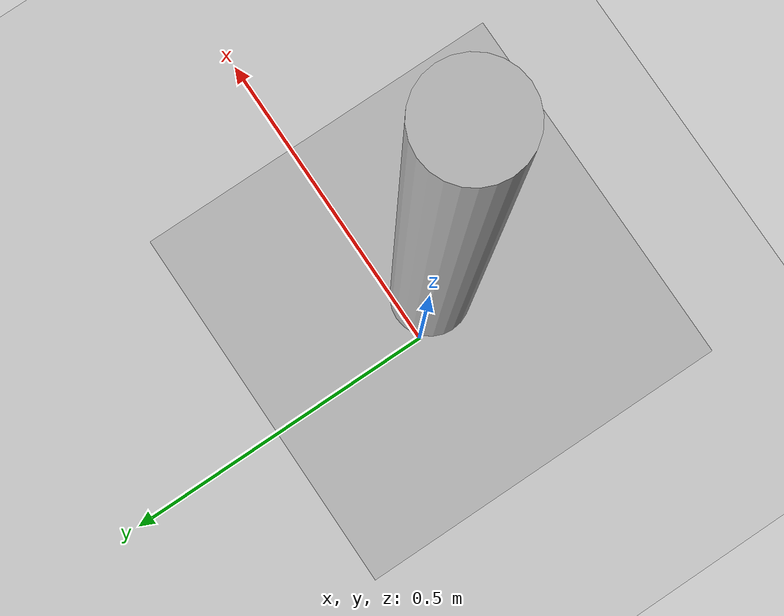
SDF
<?xml version="1.0"?>
<sdf version="1.4">
  <world name="levertask">
    <include>
      <uri>model://ground_plane</uri>
    </include>
    <include>
      <uri>model://sun</uri>
    </include>
    <include>
      <uri>model://lever_real</uri>
      <pose>0 0 0 0 0 0</pose>
    </include>
  </world>
</sdf>

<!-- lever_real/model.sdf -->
<sdf version='1.4'>
  <model name="lever_real">
  <static>false</static>
    <link name='base'>
      <pose>0 0 .25 0 0 0</pose>
      <inertial>
        <mass>2.25</mass>
      </inertial>
        <collision name='collision'>
          <geometry>
            <box>
              <size>.5 .5 .5</size>
            </box>
          </geometry>
        </collision>
        <visual name='visual'>
          <geometry>
            <box>
              <size>.5 .5 .5</size>
            </box>
          </geometry>
        </visual>
      </link>

      <joint type= "revolute" name="stuck">
        <pose>0 0 0 0 0 0</pose>
        <child>base</child>
        <parent>world</parent>
      </joint>

      <link name='arm'>
        <pose>0 0 1 0 0 0</pose>
        <inertial>
          <mass>.5</mass>
          <auto>true</auto>
        </inertial>
         <collision name='collision'>
           <geometry>
             <cylinder>
               <radius>.05</radius>
               <length>1</length>
             </cylinder>
           </geometry>
         </collision>
         <visual name='visual'>
           <geometry>
             <cylinder>
               <radius>.05</radius>
               <length>1</length>
             </cylinder>
           </geometry>
         </visual>
       </link>

       <joint type="revolute" name="fulcrum">
        <pose>0 0 -.5 0 0 0</pose>
        <child>arm</child>
        <parent>base</parent>
        <axis>
          <xyz>0 1 0</xyz>
          <dynamics>
            <friction>5</friction>
          </dynamics>
          <limit>
            <lower>-.785</lower>
            <upper>.785</upper>
          </limit>
        </axis>
      </joint>
  </model>
</sdf>
